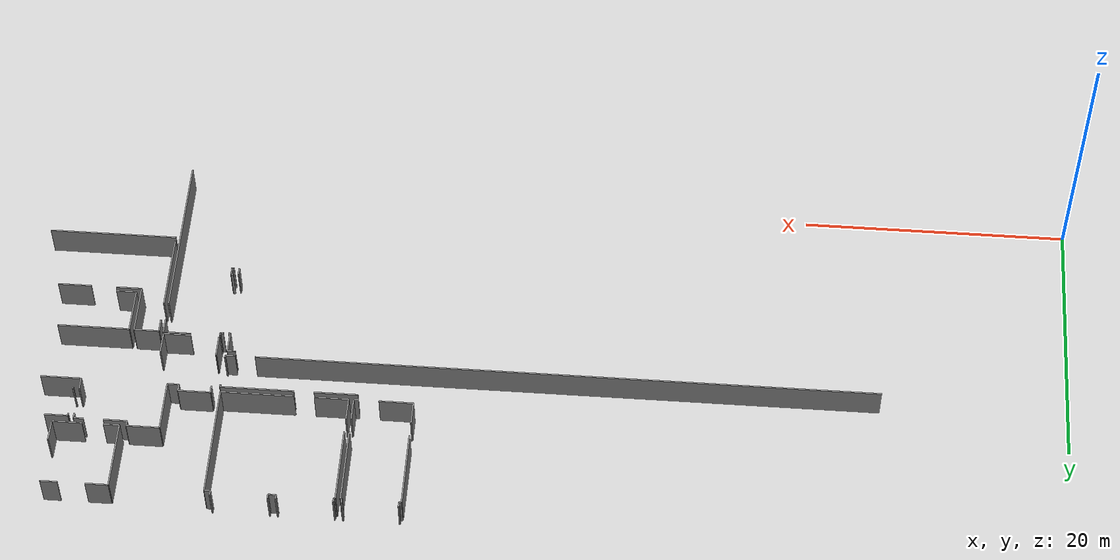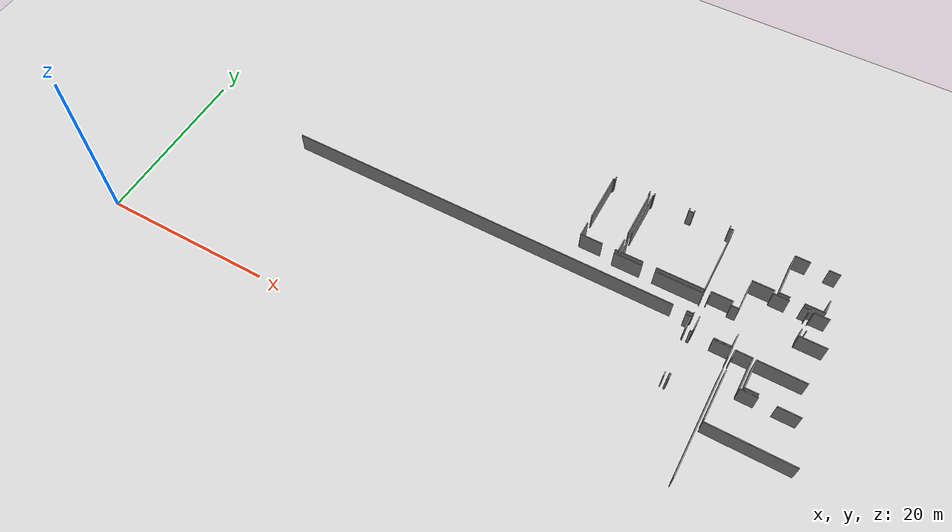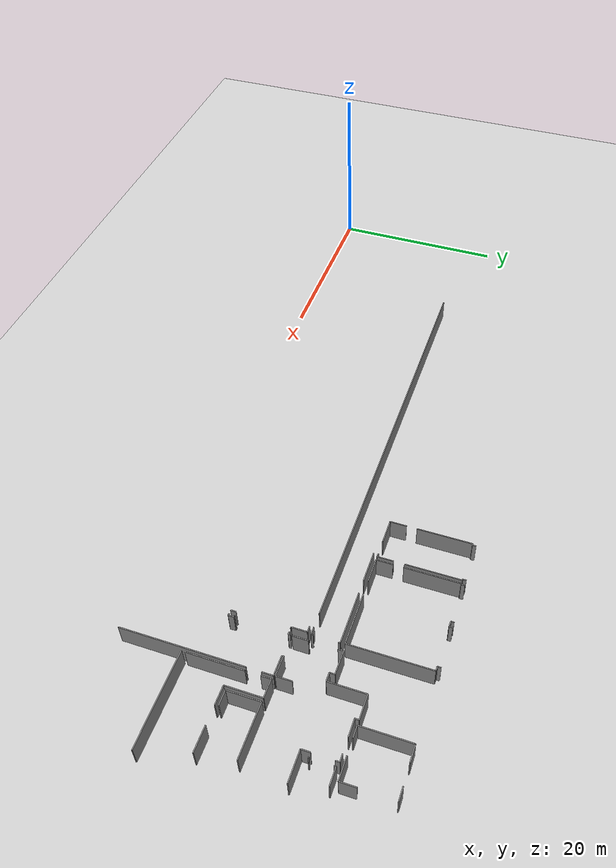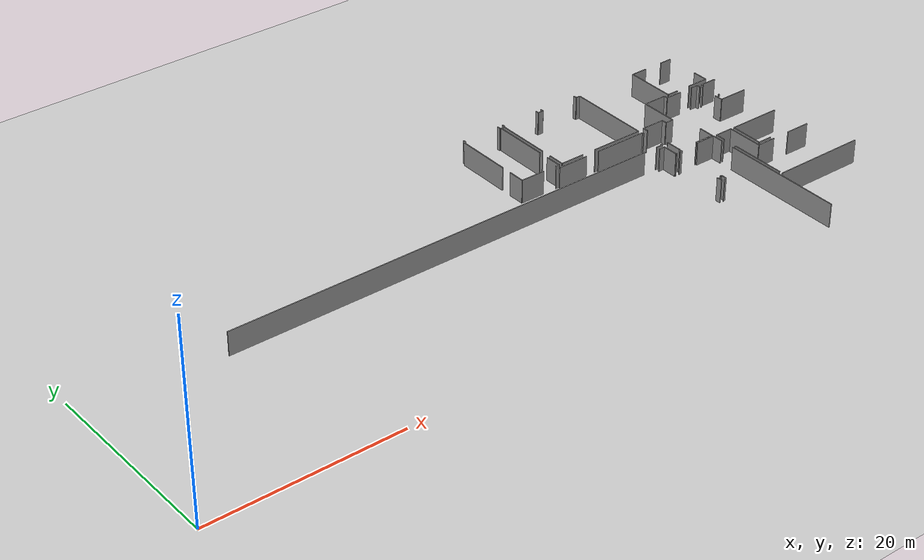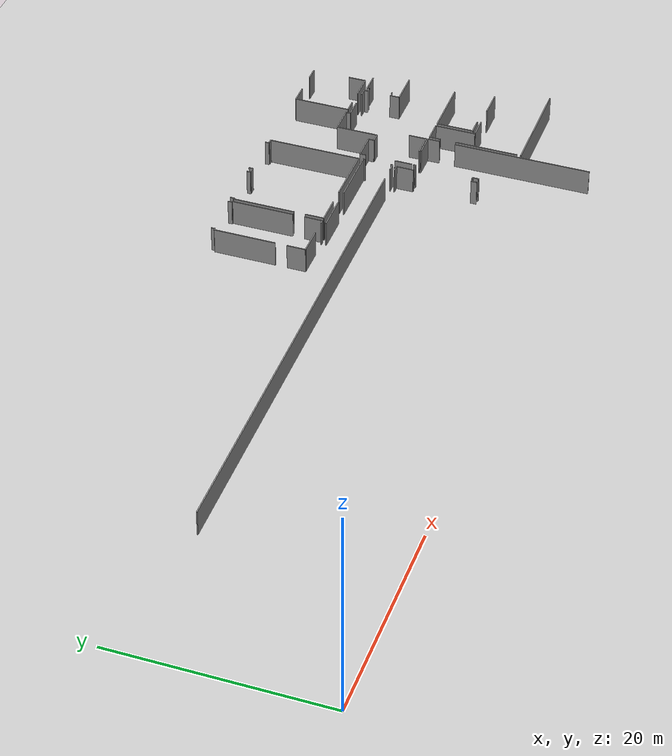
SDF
<sdf version="1.6">
 <world name="default">
  <model name="ground_plane">
   <static>1</static>
   <link name="link">
    <collision name="collision">
     <geometry><plane><normal>0 0 1</normal><size>100 100</size></plane></geometry>
     <surface><friction><ode><mu>100</mu><mu2>50</mu2></ode></friction></surface>
    </collision>
    <visual name="visual">
     <cast_shadows>0</cast_shadows>
     <geometry><plane><normal>0 0 1</normal><size>100 100</size></plane></geometry>
     <material>
      <script><uri>file://media/materials/scripts/gazebo.material</uri><name>Gazebo/Grey</name></script>
     </material>
    </visual>
   </link>
  </model>
  <model name="50010536_PLAN3">
   <static>1</static>
   <link name="Wall_569">
    <collision name="Wall_569_Collision">
     <geometry><box><size>1.7542456274 0.1 2.5</size></box></geometry>
     <pose>0.8771228137 0 1.25 0 0 0</pose>
    </collision>
    <visual name="Wall_569_Visual">
     <pose>0.8771228137 0 1.25 0 0 0</pose>
     <geometry><box><size>1.7542456274 0.1 2.5</size></box></geometry>
     <material>
      <script><uri>file://media/materials/scripts/gazebo.material</uri><name>Gazebo/Grey</name></script>
      <ambient>1 1 1 1</ambient>
     </material>
    </visual>
    <pose>151.26914897 -9.06356854903 0 0 0 1.57079632679</pose>
   </link>
   <link name="Wall_570">
    <collision name="Wall_570_Collision">
     <geometry><box><size>5.82204869378 0.1 2.5</size></box></geometry>
     <pose>2.91102434689 0 1.25 0 0 0</pose>
    </collision>
    <visual name="Wall_570_Visual">
     <pose>2.91102434689 0 1.25 0 0 0</pose>
     <geometry><box><size>5.82204869378 0.1 2.5</size></box></geometry>
     <material>
      <script><uri>file://media/materials/scripts/gazebo.material</uri><name>Gazebo/Grey</name></script>
      <ambient>1 1 1 1</ambient>
     </material>
    </visual>
    <pose>151.26914897 -6.21228454433 0 0 0 1.57079632679</pose>
   </link>
   <link name="Wall_571">
    <collision name="Wall_571_Collision">
     <geometry><box><size>0.179538456655 0.1 2.5</size></box></geometry>
     <pose>0.0897692283275 0 1.25 0 0 0</pose>
    </collision>
    <visual name="Wall_571_Visual">
     <pose>0.0897692283275 0 1.25 0 0 0</pose>
     <geometry><box><size>0.179538456655 0.1 2.5</size></box></geometry>
     <material>
      <script><uri>file://media/materials/scripts/gazebo.material</uri><name>Gazebo/Grey</name></script>
      <ambient>1 1 1 1</ambient>
     </material>
    </visual>
    <pose>151.26914897 -0.390235850554 0 0 0 0.0</pose>
   </link>
   <link name="Wall_572">
    <collision name="Wall_572_Collision">
     <geometry><box><size>0.370225057931 0.1 2.5</size></box></geometry>
     <pose>0.185112528965 0 1.25 0 0 0</pose>
    </collision>
    <visual name="Wall_572_Visual">
     <pose>0.185112528965 0 1.25 0 0 0</pose>
     <geometry><box><size>0.370225057931 0.1 2.5</size></box></geometry>
     <material>
      <script><uri>file://media/materials/scripts/gazebo.material</uri><name>Gazebo/Grey</name></script>
      <ambient>1 1 1 1</ambient>
     </material>
    </visual>
    <pose>151.448687427 -0.390235850554 0 0 0 1.57079632679</pose>
   </link>
   <link name="Wall_573">
    <collision name="Wall_573_Collision">
     <geometry><box><size>0.381728724248 0.1 2.5</size></box></geometry>
     <pose>0.190864362124 0 1.25 0 0 0</pose>
    </collision>
    <visual name="Wall_573_Visual">
     <pose>0.190864362124 0 1.25 0 0 0</pose>
     <geometry><box><size>0.381728724248 0.1 2.5</size></box></geometry>
     <material>
      <script><uri>file://media/materials/scripts/gazebo.material</uri><name>Gazebo/Grey</name></script>
      <ambient>1 1 1 1</ambient>
     </material>
    </visual>
    <pose>155.614131987 -0.0200107926229 0 0 0 -1.57079632679</pose>
   </link>
   <link name="Wall_574">
    <collision name="Wall_574_Collision">
     <geometry><box><size>0.106656508904 0.1 2.5</size></box></geometry>
     <pose>0.053328254452 0 1.25 0 0 0</pose>
    </collision>
    <visual name="Wall_574_Visual">
     <pose>0.053328254452 0 1.25 0 0 0</pose>
     <geometry><box><size>0.106656508904 0.1 2.5</size></box></geometry>
     <material>
      <script><uri>file://media/materials/scripts/gazebo.material</uri><name>Gazebo/Grey</name></script>
      <ambient>1 1 1 1</ambient>
     </material>
    </visual>
    <pose>155.614131987 -0.401739516871 0 0 0 0.0</pose>
   </link>
   <link name="Wall_575">
    <collision name="Wall_575_Collision">
     <geometry><box><size>5.85396946323 0.1 2.5</size></box></geometry>
     <pose>2.92698473161 0 1.25 0 0 0</pose>
    </collision>
    <visual name="Wall_575_Visual">
     <pose>2.92698473161 0 1.25 0 0 0</pose>
     <geometry><box><size>5.85396946323 0.1 2.5</size></box></geometry>
     <material>
      <script><uri>file://media/materials/scripts/gazebo.material</uri><name>Gazebo/Grey</name></script>
      <ambient>1 1 1 1</ambient>
     </material>
    </visual>
    <pose>155.720788496 -0.401739516871 0 0 0 -1.57079632679</pose>
   </link>
   <link name="Wall_576">
    <collision name="Wall_576_Collision">
     <geometry><box><size>1.71361457639 0.1 2.5</size></box></geometry>
     <pose>0.856807288195 0 1.25 0 0 0</pose>
    </collision>
    <visual name="Wall_576_Visual">
     <pose>0.856807288195 0 1.25 0 0 0</pose>
     <geometry><box><size>1.71361457639 0.1 2.5</size></box></geometry>
     <material>
      <script><uri>file://media/materials/scripts/gazebo.material</uri><name>Gazebo/Grey</name></script>
      <ambient>1 1 1 1</ambient>
     </material>
    </visual>
    <pose>155.720788496 -7.35325524553 0 0 0 -1.57079632679</pose>
   </link>
   <link name="Wall_577">
    <collision name="Wall_577_Collision">
     <geometry><box><size>0.359584801447 0.1 2.5</size></box></geometry>
     <pose>0.179792400724 0 1.25 0 0 0</pose>
    </collision>
    <visual name="Wall_577_Visual">
     <pose>0.179792400724 0 1.25 0 0 0</pose>
     <geometry><box><size>0.359584801447 0.1 2.5</size></box></geometry>
     <material>
      <script><uri>file://media/materials/scripts/gazebo.material</uri><name>Gazebo/Grey</name></script>
      <ambient>1 1 1 1</ambient>
     </material>
    </visual>
    <pose>155.720788496 -9.06686982192 0 0 0 3.14159265359</pose>
   </link>
   <link name="Wall_578">
    <collision name="Wall_578_Collision">
     <geometry><box><size>2.57474103016 0.1 2.5</size></box></geometry>
     <pose>1.28737051508 0 1.25 0 0 0</pose>
    </collision>
    <visual name="Wall_578_Visual">
     <pose>1.28737051508 0 1.25 0 0 0</pose>
     <geometry><box><size>2.57474103016 0.1 2.5</size></box></geometry>
     <material>
      <script><uri>file://media/materials/scripts/gazebo.material</uri><name>Gazebo/Grey</name></script>
      <ambient>1 1 1 1</ambient>
     </material>
    </visual>
    <pose>153.843887884 -9.06686982192 0 0 0 3.14031047656</pose>
   </link>
   <link name="Wall_579">
    <collision name="Wall_579_Collision">
     <geometry><box><size>1.75703901216 0.1 2.5</size></box></geometry>
     <pose>0.878519506079 0 1.25 0 0 0</pose>
    </collision>
    <visual name="Wall_579_Visual">
     <pose>0.878519506079 0 1.25 0 0 0</pose>
     <geometry><box><size>1.75703901216 0.1 2.5</size></box></geometry>
     <material>
      <script><uri>file://media/materials/scripts/gazebo.material</uri><name>Gazebo/Grey</name></script>
      <ambient>1 1 1 1</ambient>
     </material>
    </visual>
    <pose>156.098149383 -9.07169475923 0 0 0 1.57079632679</pose>
   </link>
   <link name="Wall_580">
    <collision name="Wall_580_Collision">
     <geometry><box><size>5.8357870679 0.1 2.5</size></box></geometry>
     <pose>2.91789353395 0 1.25 0 0 0</pose>
    </collision>
    <visual name="Wall_580_Visual">
     <pose>2.91789353395 0 1.25 0 0 0</pose>
     <geometry><box><size>5.8357870679 0.1 2.5</size></box></geometry>
     <material>
      <script><uri>file://media/materials/scripts/gazebo.material</uri><name>Gazebo/Grey</name></script>
      <ambient>1 1 1 1</ambient>
     </material>
    </visual>
    <pose>156.098149383 -6.22498174777 0 0 0 1.57079632679</pose>
   </link>
   <link name="Wall_581">
    <collision name="Wall_581_Collision">
     <geometry><box><size>0.118591880138 0.1 2.5</size></box></geometry>
     <pose>0.0592959400692 0 1.25 0 0 0</pose>
    </collision>
    <visual name="Wall_581_Visual">
     <pose>0.0592959400692 0 1.25 0 0 0</pose>
     <geometry><box><size>0.118591880138 0.1 2.5</size></box></geometry>
     <material>
      <script><uri>file://media/materials/scripts/gazebo.material</uri><name>Gazebo/Grey</name></script>
      <ambient>1 1 1 1</ambient>
     </material>
    </visual>
    <pose>156.098149383 -0.389194679872 0 0 0 0.0</pose>
   </link>
   <link name="Wall_582">
    <collision name="Wall_582_Collision">
     <geometry><box><size>0.364079611466 0.1 2.5</size></box></geometry>
     <pose>0.182039805733 0 1.25 0 0 0</pose>
    </collision>
    <visual name="Wall_582_Visual">
     <pose>0.182039805733 0 1.25 0 0 0</pose>
     <geometry><box><size>0.364079611466 0.1 2.5</size></box></geometry>
     <material>
      <script><uri>file://media/materials/scripts/gazebo.material</uri><name>Gazebo/Grey</name></script>
      <ambient>1 1 1 1</ambient>
     </material>
    </visual>
    <pose>156.216741263 -0.389194679872 0 0 0 1.57079632679</pose>
   </link>
   <link name="Wall_583">
    <collision name="Wall_583_Collision">
     <geometry><box><size>0.351509380059 0.1 2.5</size></box></geometry>
     <pose>0.17575469003 0 1.25 0 0 0</pose>
    </collision>
    <visual name="Wall_583_Visual">
     <pose>0.17575469003 0 1.25 0 0 0</pose>
     <geometry><box><size>0.351509380059 0.1 2.5</size></box></geometry>
     <material>
      <script><uri>file://media/materials/scripts/gazebo.material</uri><name>Gazebo/Grey</name></script>
      <ambient>1 1 1 1</ambient>
     </material>
    </visual>
    <pose>160.416214329 -0.0251150684062 0 0 0 -1.57079632679</pose>
   </link>
   <link name="Wall_584">
    <collision name="Wall_584_Collision">
     <geometry><box><size>0.583563470146 0.1 2.5</size></box></geometry>
     <pose>0.291781735073 0 1.25 0 0 0</pose>
    </collision>
    <visual name="Wall_584_Visual">
     <pose>0.291781735073 0 1.25 0 0 0</pose>
     <geometry><box><size>0.583563470146 0.1 2.5</size></box></geometry>
     <material>
      <script><uri>file://media/materials/scripts/gazebo.material</uri><name>Gazebo/Grey</name></script>
      <ambient>1 1 1 1</ambient>
     </material>
    </visual>
    <pose>160.416214329 -0.376624448465 0 0 0 0.0</pose>
   </link>
   <link name="Wall_585">
    <collision name="Wall_585_Collision">
     <geometry><box><size>0.351509380059 0.1 2.5</size></box></geometry>
     <pose>0.17575469003 0 1.25 0 0 0</pose>
    </collision>
    <visual name="Wall_585_Visual">
     <pose>0.17575469003 0 1.25 0 0 0</pose>
     <geometry><box><size>0.351509380059 0.1 2.5</size></box></geometry>
     <material>
      <script><uri>file://media/materials/scripts/gazebo.material</uri><name>Gazebo/Grey</name></script>
      <ambient>1 1 1 1</ambient>
     </material>
    </visual>
    <pose>160.999777799 -0.376624448465 0 0 0 1.57079632679</pose>
   </link>
   <link name="Wall_586">
    <collision name="Wall_586_Collision">
     <geometry><box><size>0.385741040536 0.1 2.5</size></box></geometry>
     <pose>0.192870520268 0 1.25 0 0 0</pose>
    </collision>
    <visual name="Wall_586_Visual">
     <pose>0.192870520268 0 1.25 0 0 0</pose>
     <geometry><box><size>0.385741040536 0.1 2.5</size></box></geometry>
     <material>
      <script><uri>file://media/materials/scripts/gazebo.material</uri><name>Gazebo/Grey</name></script>
      <ambient>1 1 1 1</ambient>
     </material>
    </visual>
    <pose>165.23327937 -0.0251150684062 0 0 0 -1.57079632679</pose>
   </link>
   <link name="Wall_587">
    <collision name="Wall_587_Collision">
     <geometry><box><size>0.454559883186 0.1 2.5</size></box></geometry>
     <pose>0.227279941593 0 1.25 0 0 0</pose>
    </collision>
    <visual name="Wall_587_Visual">
     <pose>0.227279941593 0 1.25 0 0 0</pose>
     <geometry><box><size>0.454559883186 0.1 2.5</size></box></geometry>
     <material>
      <script><uri>file://media/materials/scripts/gazebo.material</uri><name>Gazebo/Grey</name></script>
      <ambient>1 1 1 1</ambient>
     </material>
    </visual>
    <pose>165.23327937 -0.410856108942 0 0 0 0.0</pose>
   </link>
   <link name="Wall_588">
    <collision name="Wall_588_Collision">
     <geometry><box><size>8.65525188077 0.1 2.5</size></box></geometry>
     <pose>4.32762594039 0 1.25 0 0 0</pose>
    </collision>
    <visual name="Wall_588_Visual">
     <pose>4.32762594039 0 1.25 0 0 0</pose>
     <geometry><box><size>8.65525188077 0.1 2.5</size></box></geometry>
     <material>
      <script><uri>file://media/materials/scripts/gazebo.material</uri><name>Gazebo/Grey</name></script>
      <ambient>1 1 1 1</ambient>
     </material>
    </visual>
    <pose>165.687839253 -0.410856108942 0 0 0 -1.57079632679</pose>
   </link>
   <link name="Wall_589">
    <collision name="Wall_589_Collision">
     <geometry><box><size>5.51312573406 0.1 2.5</size></box></geometry>
     <pose>2.75656286703 0 1.25 0 0 0</pose>
    </collision>
    <visual name="Wall_589_Visual">
     <pose>2.75656286703 0 1.25 0 0 0</pose>
     <geometry><box><size>5.51312573406 0.1 2.5</size></box></geometry>
     <material>
      <script><uri>file://media/materials/scripts/gazebo.material</uri><name>Gazebo/Grey</name></script>
      <ambient>1 1 1 1</ambient>
     </material>
    </visual>
    <pose>165.687839253 -9.06610798972 0 0 0 3.14159265359</pose>
   </link>
   <link name="Wall_590">
    <collision name="Wall_590_Collision">
     <geometry><box><size>2.56992004902 0.1 2.5</size></box></geometry>
     <pose>1.28496002451 0 1.25 0 0 0</pose>
    </collision>
    <visual name="Wall_590_Visual">
     <pose>1.28496002451 0 1.25 0 0 0</pose>
     <geometry><box><size>2.56992004902 0.1 2.5</size></box></geometry>
     <material>
      <script><uri>file://media/materials/scripts/gazebo.material</uri><name>Gazebo/Grey</name></script>
      <ambient>1 1 1 1</ambient>
     </material>
    </visual>
    <pose>158.668063359 -9.06610798972 0 0 0 -3.13941874397</pose>
   </link>
   <link name="Wall_606">
    <collision name="Wall_606_Collision">
     <geometry><box><size>3.30609783195 0.1 2.5</size></box></geometry>
     <pose>1.65304891598 0 1.25 0 0 0</pose>
    </collision>
    <visual name="Wall_606_Visual">
     <pose>1.65304891598 0 1.25 0 0 0</pose>
     <geometry><box><size>3.30609783195 0.1 2.5</size></box></geometry>
     <material>
      <script><uri>file://media/materials/scripts/gazebo.material</uri><name>Gazebo/Grey</name></script>
      <ambient>1 1 1 1</ambient>
     </material>
    </visual>
    <pose>155.430022538 -9.51355743897 0 0 0 0.0</pose>
   </link>
   <link name="Wall_607">
    <collision name="Wall_607_Collision">
     <geometry><box><size>5.53674253246 0.1 2.5</size></box></geometry>
     <pose>2.76837126623 0 1.25 0 0 0</pose>
    </collision>
    <visual name="Wall_607_Visual">
     <pose>2.76837126623 0 1.25 0 0 0</pose>
     <geometry><box><size>5.53674253246 0.1 2.5</size></box></geometry>
     <material>
      <script><uri>file://media/materials/scripts/gazebo.material</uri><name>Gazebo/Grey</name></script>
      <ambient>1 1 1 1</ambient>
     </material>
    </visual>
    <pose>160.230581214 -9.51355743897 0 0 0 0.0</pose>
   </link>
   <link name="Wall_608">
    <collision name="Wall_608_Collision">
     <geometry><box><size>0.20213947878 0.1 2.5</size></box></geometry>
     <pose>0.10106973939 0 1.25 0 0 0</pose>
    </collision>
    <visual name="Wall_608_Visual">
     <pose>0.10106973939 0 1.25 0 0 0</pose>
     <geometry><box><size>0.20213947878 0.1 2.5</size></box></geometry>
     <material>
      <script><uri>file://media/materials/scripts/gazebo.material</uri><name>Gazebo/Grey</name></script>
      <ambient>1 1 1 1</ambient>
     </material>
    </visual>
    <pose>165.767323747 -9.51355743897 0 0 0 -1.57079632679</pose>
   </link>
   <link name="Wall_609">
    <collision name="Wall_609_Collision">
     <geometry><box><size>0.195029044853 0.1 2.5</size></box></geometry>
     <pose>0.0975145224264 0 1.25 0 0 0</pose>
    </collision>
    <visual name="Wall_609_Visual">
     <pose>0.0975145224264 0 1.25 0 0 0</pose>
     <geometry><box><size>0.195029044853 0.1 2.5</size></box></geometry>
     <material>
      <script><uri>file://media/materials/scripts/gazebo.material</uri><name>Gazebo/Grey</name></script>
      <ambient>1 1 1 1</ambient>
     </material>
    </visual>
    <pose>165.767323747 -12.1771767768 0 0 0 -1.57079632679</pose>
   </link>
   <link name="Wall_610">
    <collision name="Wall_610_Collision">
     <geometry><box><size>0.750658667428 0.1 2.5</size></box></geometry>
     <pose>0.375329333714 0 1.25 0 0 0</pose>
    </collision>
    <visual name="Wall_610_Visual">
     <pose>0.375329333714 0 1.25 0 0 0</pose>
     <geometry><box><size>0.750658667428 0.1 2.5</size></box></geometry>
     <material>
      <script><uri>file://media/materials/scripts/gazebo.material</uri><name>Gazebo/Grey</name></script>
      <ambient>1 1 1 1</ambient>
     </material>
    </visual>
    <pose>165.767323747 -12.3722058217 0 0 0 3.14159265359</pose>
   </link>
   <link name="Wall_611">
    <collision name="Wall_611_Collision">
     <geometry><box><size>46.8882328667 0.1 2.5</size></box></geometry>
     <pose>23.4441164334 0 1.25 0 0 0</pose>
    </collision>
    <visual name="Wall_611_Visual">
     <pose>23.4441164334 0 1.25 0 0 0</pose>
     <geometry><box><size>46.8882328667 0.1 2.5</size></box></geometry>
     <material>
      <script><uri>file://media/materials/scripts/gazebo.material</uri><name>Gazebo/Grey</name></script>
      <ambient>1 1 1 1</ambient>
     </material>
    </visual>
    <pose>163.517633241 -12.3722058217 0 0 0 3.14159265359</pose>
   </link>
   <link name="Wall_695">
    <collision name="Wall_695_Collision">
     <geometry><box><size>1.72529600356 0.1 2.5</size></box></geometry>
     <pose>0.862648001778 0 1.25 0 0 0</pose>
    </collision>
    <visual name="Wall_695_Visual">
     <pose>0.862648001778 0 1.25 0 0 0</pose>
     <geometry><box><size>1.72529600356 0.1 2.5</size></box></geometry>
     <material>
      <script><uri>file://media/materials/scripts/gazebo.material</uri><name>Gazebo/Grey</name></script>
      <ambient>1 1 1 1</ambient>
     </material>
    </visual>
    <pose>172.711678253 -0.360321239247 0 0 0 0.0</pose>
   </link>
   <link name="Wall_696">
    <collision name="Wall_696_Collision">
     <geometry><box><size>1.29232136622 0.1 2.5</size></box></geometry>
     <pose>0.64616068311 0 1.25 0 0 0</pose>
    </collision>
    <visual name="Wall_696_Visual">
     <pose>0.64616068311 0 1.25 0 0 0</pose>
     <geometry><box><size>1.29232136622 0.1 2.5</size></box></geometry>
     <material>
      <script><uri>file://media/materials/scripts/gazebo.material</uri><name>Gazebo/Grey</name></script>
      <ambient>1 1 1 1</ambient>
     </material>
    </visual>
    <pose>176.4581151 -0.360321239247 0 0 0 0.0</pose>
   </link>
   <link name="Wall_699">
    <collision name="Wall_699_Collision">
     <geometry><box><size>1.64296733644 0.1 2.5</size></box></geometry>
     <pose>0.821483668222 0 1.25 0 0 0</pose>
    </collision>
    <visual name="Wall_699_Visual">
     <pose>0.821483668222 0 1.25 0 0 0</pose>
     <geometry><box><size>1.64296733644 0.1 2.5</size></box></geometry>
     <material>
      <script><uri>file://media/materials/scripts/gazebo.material</uri><name>Gazebo/Grey</name></script>
      <ambient>1 1 1 1</ambient>
     </material>
    </visual>
    <pose>177.750436466 -3.94695108402 0 0 0 -1.57079632679</pose>
   </link>
   <link name="Wall_700">
    <collision name="Wall_700_Collision">
     <geometry><box><size>2.2534996667 0.1 2.5</size></box></geometry>
     <pose>1.12674983335 0 1.25 0 0 0</pose>
    </collision>
    <visual name="Wall_700_Visual">
     <pose>1.12674983335 0 1.25 0 0 0</pose>
     <geometry><box><size>2.2534996667 0.1 2.5</size></box></geometry>
     <material>
      <script><uri>file://media/materials/scripts/gazebo.material</uri><name>Gazebo/Grey</name></script>
      <ambient>1 1 1 1</ambient>
     </material>
    </visual>
    <pose>177.750436466 -5.58991842047 0 0 0 3.14159265359</pose>
   </link>
   <link name="Wall_701">
    <collision name="Wall_701_Collision">
     <geometry><box><size>1.19531473193 0.1 2.5</size></box></geometry>
     <pose>0.597657365965 0 1.25 0 0 0</pose>
    </collision>
    <visual name="Wall_701_Visual">
     <pose>0.597657365965 0 1.25 0 0 0</pose>
     <geometry><box><size>1.19531473193 0.1 2.5</size></box></geometry>
     <material>
      <script><uri>file://media/materials/scripts/gazebo.material</uri><name>Gazebo/Grey</name></script>
      <ambient>1 1 1 1</ambient>
     </material>
    </visual>
    <pose>173.908516649 -5.58991842047 0 0 0 3.14159265359</pose>
   </link>
   <link name="Wall_702">
    <collision name="Wall_702_Collision">
     <geometry><box><size>5.22959740318 0.1 2.5</size></box></geometry>
     <pose>2.61479870159 0 1.25 0 0 0</pose>
    </collision>
    <visual name="Wall_702_Visual">
     <pose>2.61479870159 0 1.25 0 0 0</pose>
     <geometry><box><size>5.22959740318 0.1 2.5</size></box></geometry>
     <material>
      <script><uri>file://media/materials/scripts/gazebo.material</uri><name>Gazebo/Grey</name></script>
      <ambient>1 1 1 1</ambient>
     </material>
    </visual>
    <pose>172.713201917 -5.58991842047 0 0 0 1.57108768085</pose>
   </link>
   <link name="Wall_703">
    <collision name="Wall_703_Collision">
     <geometry><box><size>1.7664349427 0.1 2.5</size></box></geometry>
     <pose>0.883217471352 0 1.25 0 0 0</pose>
    </collision>
    <visual name="Wall_703_Visual">
     <pose>0.883217471352 0 1.25 0 0 0</pose>
     <geometry><box><size>1.7664349427 0.1 2.5</size></box></geometry>
     <material>
      <script><uri>file://media/materials/scripts/gazebo.material</uri><name>Gazebo/Grey</name></script>
      <ambient>1 1 1 1</ambient>
     </material>
    </visual>
    <pose>176.639685109 -6.1579405136 0 0 0 0.0</pose>
   </link>
   <link name="Wall_706">
    <collision name="Wall_706_Collision">
     <geometry><box><size>0.104371012285 0.1 2.5</size></box></geometry>
     <pose>0.0521855061423 0 1.25 0 0 0</pose>
    </collision>
    <visual name="Wall_706_Visual">
     <pose>0.0521855061423 0 1.25 0 0 0</pose>
     <geometry><box><size>0.104371012285 0.1 2.5</size></box></geometry>
     <material>
      <script><uri>file://media/materials/scripts/gazebo.material</uri><name>Gazebo/Grey</name></script>
      <ambient>1 1 1 1</ambient>
     </material>
    </visual>
    <pose>176.661524299 -8.69636542552 0 0 0 1.57079632679</pose>
   </link>
   <link name="Wall_707">
    <collision name="Wall_707_Collision">
     <geometry><box><size>0.215438581014 0.1 2.5</size></box></geometry>
     <pose>0.107719290507 0 1.25 0 0 0</pose>
    </collision>
    <visual name="Wall_707_Visual">
     <pose>0.107719290507 0 1.25 0 0 0</pose>
     <geometry><box><size>0.215438581014 0.1 2.5</size></box></geometry>
     <material>
      <script><uri>file://media/materials/scripts/gazebo.material</uri><name>Gazebo/Grey</name></script>
      <ambient>1 1 1 1</ambient>
     </material>
    </visual>
    <pose>176.661524299 -6.37226930768 0 0 0 1.6723415898</pose>
   </link>
   <link name="Wall_712">
    <collision name="Wall_712_Collision">
     <geometry><box><size>2.43989461321 0.1 2.5</size></box></geometry>
     <pose>1.21994730661 0 1.25 0 0 0</pose>
    </collision>
    <visual name="Wall_712_Visual">
     <pose>1.21994730661 0 1.25 0 0 0</pose>
     <geometry><box><size>2.43989461321 0.1 2.5</size></box></geometry>
     <material>
      <script><uri>file://media/materials/scripts/gazebo.material</uri><name>Gazebo/Grey</name></script>
      <ambient>1 1 1 1</ambient>
     </material>
    </visual>
    <pose>166.408786465 -8.95767387233 0 0 0 0.0</pose>
   </link>
   <link name="Wall_713">
    <collision name="Wall_713_Collision">
     <geometry><box><size>0.540392978447 0.1 2.5</size></box></geometry>
     <pose>0.270196489223 0 1.25 0 0 0</pose>
    </collision>
    <visual name="Wall_713_Visual">
     <pose>0.270196489223 0 1.25 0 0 0</pose>
     <geometry><box><size>0.540392978447 0.1 2.5</size></box></geometry>
     <material>
      <script><uri>file://media/materials/scripts/gazebo.material</uri><name>Gazebo/Grey</name></script>
      <ambient>1 1 1 1</ambient>
     </material>
    </visual>
    <pose>168.848681078 -8.95767387233 0 0 0 -1.57079632679</pose>
   </link>
   <link name="Wall_714">
    <collision name="Wall_714_Collision">
     <geometry><box><size>0.873313652668 0.1 2.5</size></box></geometry>
     <pose>0.436656826334 0 1.25 0 0 0</pose>
    </collision>
    <visual name="Wall_714_Visual">
     <pose>0.436656826334 0 1.25 0 0 0</pose>
     <geometry><box><size>0.873313652668 0.1 2.5</size></box></geometry>
     <material>
      <script><uri>file://media/materials/scripts/gazebo.material</uri><name>Gazebo/Grey</name></script>
      <ambient>1 1 1 1</ambient>
     </material>
    </visual>
    <pose>168.848681078 -9.49806685078 0 0 0 0.0</pose>
   </link>
   <link name="Wall_715">
    <collision name="Wall_715_Collision">
     <geometry><box><size>3.92193759325 0.1 2.5</size></box></geometry>
     <pose>1.96096879662 0 1.25 0 0 0</pose>
    </collision>
    <visual name="Wall_715_Visual">
     <pose>1.96096879662 0 1.25 0 0 0</pose>
     <geometry><box><size>3.92193759325 0.1 2.5</size></box></geometry>
     <material>
      <script><uri>file://media/materials/scripts/gazebo.material</uri><name>Gazebo/Grey</name></script>
      <ambient>1 1 1 1</ambient>
     </material>
    </visual>
    <pose>169.721994731 -9.49806685078 0 0 0 1.57079632679</pose>
   </link>
   <link name="Wall_716">
    <collision name="Wall_716_Collision">
     <geometry><box><size>2.48585848967 0.1 2.5</size></box></geometry>
     <pose>1.24292924483 0 1.25 0 0 0</pose>
    </collision>
    <visual name="Wall_716_Visual">
     <pose>1.24292924483 0 1.25 0 0 0</pose>
     <geometry><box><size>2.48585848967 0.1 2.5</size></box></geometry>
     <material>
      <script><uri>file://media/materials/scripts/gazebo.material</uri><name>Gazebo/Grey</name></script>
      <ambient>1 1 1 1</ambient>
     </material>
    </visual>
    <pose>169.721994731 -5.57612925753 0 0 0 0.0</pose>
   </link>
   <link name="Wall_717">
    <collision name="Wall_717_Collision">
     <geometry><box><size>0.416646033711 0.1 2.5</size></box></geometry>
     <pose>0.208323016856 0 1.25 0 0 0</pose>
    </collision>
    <visual name="Wall_717_Visual">
     <pose>0.208323016856 0 1.25 0 0 0</pose>
     <geometry><box><size>0.416646033711 0.1 2.5</size></box></geometry>
     <material>
      <script><uri>file://media/materials/scripts/gazebo.material</uri><name>Gazebo/Grey</name></script>
      <ambient>1 1 1 1</ambient>
     </material>
    </visual>
    <pose>172.20785322 -5.57612925753 0 0 0 -1.57079632679</pose>
   </link>
   <link name="Wall_718">
    <collision name="Wall_718_Collision">
     <geometry><box><size>1.76770466305 0.1 2.5</size></box></geometry>
     <pose>0.883852331524 0 1.25 0 0 0</pose>
    </collision>
    <visual name="Wall_718_Visual">
     <pose>0.883852331524 0 1.25 0 0 0</pose>
     <geometry><box><size>1.76770466305 0.1 2.5</size></box></geometry>
     <material>
      <script><uri>file://media/materials/scripts/gazebo.material</uri><name>Gazebo/Grey</name></script>
      <ambient>1 1 1 1</ambient>
     </material>
    </visual>
    <pose>172.20785322 -5.99277529124 0 0 0 0.0</pose>
   </link>
   <link name="Wall_719">
    <collision name="Wall_719_Collision">
     <geometry><box><size>0.735675967368 0.1 2.5</size></box></geometry>
     <pose>0.367837983684 0 1.25 0 0 0</pose>
    </collision>
    <visual name="Wall_719_Visual">
     <pose>0.367837983684 0 1.25 0 0 0</pose>
     <geometry><box><size>0.735675967368 0.1 2.5</size></box></geometry>
     <material>
      <script><uri>file://media/materials/scripts/gazebo.material</uri><name>Gazebo/Grey</name></script>
      <ambient>1 1 1 1</ambient>
     </material>
    </visual>
    <pose>175.460622798 -5.99277529124 0 0 0 0.0</pose>
   </link>
   <link name="Wall_720">
    <collision name="Wall_720_Collision">
     <geometry><box><size>0.406412087738 0.1 2.5</size></box></geometry>
     <pose>0.203206043869 0 1.25 0 0 0</pose>
    </collision>
    <visual name="Wall_720_Visual">
     <pose>0.203206043869 0 1.25 0 0 0</pose>
     <geometry><box><size>0.406412087738 0.1 2.5</size></box></geometry>
     <material>
      <script><uri>file://media/materials/scripts/gazebo.material</uri><name>Gazebo/Grey</name></script>
      <ambient>1 1 1 1</ambient>
     </material>
    </visual>
    <pose>176.196298765 -5.99277529124 0 0 0 -1.57079632679</pose>
   </link>
   <link name="Wall_721">
    <collision name="Wall_721_Collision">
     <geometry><box><size>0.924102466432 0.1 2.5</size></box></geometry>
     <pose>0.462051233216 0 1.25 0 0 0</pose>
    </collision>
    <visual name="Wall_721_Visual">
     <pose>0.462051233216 0 1.25 0 0 0</pose>
     <geometry><box><size>0.924102466432 0.1 2.5</size></box></geometry>
     <material>
      <script><uri>file://media/materials/scripts/gazebo.material</uri><name>Gazebo/Grey</name></script>
      <ambient>1 1 1 1</ambient>
     </material>
    </visual>
    <pose>176.196298765 -8.60545344888 0 0 0 -1.57079632679</pose>
   </link>
   <link name="Wall_722">
    <collision name="Wall_722_Collision">
     <geometry><box><size>3.06154969368 0.1 2.5</size></box></geometry>
     <pose>1.53077484684 0 1.25 0 0 0</pose>
    </collision>
    <visual name="Wall_722_Visual">
     <pose>1.53077484684 0 1.25 0 0 0</pose>
     <geometry><box><size>3.06154969368 0.1 2.5</size></box></geometry>
     <material>
      <script><uri>file://media/materials/scripts/gazebo.material</uri><name>Gazebo/Grey</name></script>
      <ambient>1 1 1 1</ambient>
     </material>
    </visual>
    <pose>176.196298765 -9.52955591531 0 0 0 0.0</pose>
   </link>
   <link name="Wall_727">
    <collision name="Wall_727_Collision">
     <geometry><box><size>1.65266799987 0.1 2.5</size></box></geometry>
     <pose>0.826333999937 0 1.25 0 0 0</pose>
    </collision>
    <visual name="Wall_727_Visual">
     <pose>0.826333999937 0 1.25 0 0 0</pose>
     <geometry><box><size>1.65266799987 0.1 2.5</size></box></geometry>
     <material>
      <script><uri>file://media/materials/scripts/gazebo.material</uri><name>Gazebo/Grey</name></script>
      <ambient>1 1 1 1</ambient>
     </material>
    </visual>
    <pose>170.676062597 -12.3653493318 0 0 0 -1.57079632679</pose>
   </link>
   <link name="Wall_728">
    <collision name="Wall_728_Collision">
     <geometry><box><size>2.07904009142 0.1 2.5</size></box></geometry>
     <pose>1.03952004571 0 1.25 0 0 0</pose>
    </collision>
    <visual name="Wall_728_Visual">
     <pose>1.03952004571 0 1.25 0 0 0</pose>
     <geometry><box><size>2.07904009142 0.1 2.5</size></box></geometry>
     <material>
      <script><uri>file://media/materials/scripts/gazebo.material</uri><name>Gazebo/Grey</name></script>
      <ambient>1 1 1 1</ambient>
     </material>
    </visual>
    <pose>170.676062597 -14.0180173317 0 0 0 3.14159265359</pose>
   </link>
   <link name="Wall_729">
    <collision name="Wall_729_Collision">
     <geometry><box><size>1.63768529981 0.1 2.5</size></box></geometry>
     <pose>0.818842649906 0 1.25 0 0 0</pose>
    </collision>
    <visual name="Wall_729_Visual">
     <pose>0.818842649906 0 1.25 0 0 0</pose>
     <geometry><box><size>1.63768529981 0.1 2.5</size></box></geometry>
     <material>
      <script><uri>file://media/materials/scripts/gazebo.material</uri><name>Gazebo/Grey</name></script>
      <ambient>1 1 1 1</ambient>
     </material>
    </visual>
    <pose>166.460337111 -14.0180173317 0 0 0 1.57079632679</pose>
   </link>
   <link name="Wall_730">
    <collision name="Wall_730_Collision">
     <geometry><box><size>0.0401231628734 0.1 2.5</size></box></geometry>
     <pose>0.0200615814367 0 1.25 0 0 0</pose>
    </collision>
    <visual name="Wall_730_Visual">
     <pose>0.0200615814367 0 1.25 0 0 0</pose>
     <geometry><box><size>0.0401231628734 0.1 2.5</size></box></geometry>
     <material>
      <script><uri>file://media/materials/scripts/gazebo.material</uri><name>Gazebo/Grey</name></script>
      <ambient>1 1 1 1</ambient>
     </material>
    </visual>
    <pose>166.460337111 -12.3803320319 0 0 0 3.14159265359</pose>
   </link>
   <link name="Wall_731">
    <collision name="Wall_731_Collision">
     <geometry><box><size>0.560063266577 0.1 2.5</size></box></geometry>
     <pose>0.280031633288 0 1.25 0 0 0</pose>
    </collision>
    <visual name="Wall_731_Visual">
     <pose>0.280031633288 0 1.25 0 0 0</pose>
     <geometry><box><size>0.560063266577 0.1 2.5</size></box></geometry>
     <material>
      <script><uri>file://media/materials/scripts/gazebo.material</uri><name>Gazebo/Grey</name></script>
      <ambient>1 1 1 1</ambient>
     </material>
    </visual>
    <pose>166.420213948 -9.51762054408 0 0 0 1.59120165748</pose>
   </link>
   <link name="Wall_774">
    <collision name="Wall_774_Collision">
     <geometry><box><size>3.47801796654 0.1 2.5</size></box></geometry>
     <pose>1.73900898327 0 1.25 0 0 0</pose>
    </collision>
    <visual name="Wall_774_Visual">
     <pose>1.73900898327 0 1.25 0 0 0</pose>
     <geometry><box><size>3.47801796654 0.1 2.5</size></box></geometry>
     <material>
      <script><uri>file://media/materials/scripts/gazebo.material</uri><name>Gazebo/Grey</name></script>
      <ambient>1 1 1 1</ambient>
     </material>
    </visual>
    <pose>173.315303304 -17.7289020093 0 0 0 1.57079632679</pose>
   </link>
   <link name="Wall_775">
    <collision name="Wall_775_Collision">
     <geometry><box><size>5.45217915754 0.1 2.5</size></box></geometry>
     <pose>2.72608957877 0 1.25 0 0 0</pose>
    </collision>
    <visual name="Wall_775_Visual">
     <pose>2.72608957877 0 1.25 0 0 0</pose>
     <geometry><box><size>5.45217915754 0.1 2.5</size></box></geometry>
     <material>
      <script><uri>file://media/materials/scripts/gazebo.material</uri><name>Gazebo/Grey</name></script>
      <ambient>1 1 1 1</ambient>
     </material>
    </visual>
    <pose>173.315303304 -14.2508840428 0 0 0 0.0</pose>
   </link>
   <link name="Wall_778">
    <collision name="Wall_778_Collision">
     <geometry><box><size>1.5115109574 0.1 2.5</size></box></geometry>
     <pose>0.755755478699 0 1.25 0 0 0</pose>
    </collision>
    <visual name="Wall_778_Visual">
     <pose>0.755755478699 0 1.25 0 0 0</pose>
     <geometry><box><size>1.5115109574 0.1 2.5</size></box></geometry>
     <material>
      <script><uri>file://media/materials/scripts/gazebo.material</uri><name>Gazebo/Grey</name></script>
      <ambient>1 1 1 1</ambient>
     </material>
    </visual>
    <pose>174.826778402 -17.7184903025 0 0 0 -3.13470432168</pose>
   </link>
   <link name="Wall_784">
    <collision name="Wall_784_Collision">
     <geometry><box><size>5.96514617655 0.1 2.5</size></box></geometry>
     <pose>2.98257308828 0 1.25 0 0 0</pose>
    </collision>
    <visual name="Wall_784_Visual">
     <pose>2.98257308828 0 1.25 0 0 0</pose>
     <geometry><box><size>5.96514617655 0.1 2.5</size></box></geometry>
     <material>
      <script><uri>file://media/materials/scripts/gazebo.material</uri><name>Gazebo/Grey</name></script>
      <ambient>1 1 1 1</ambient>
     </material>
    </visual>
    <pose>171.055962924 -22.7552169635 0 0 0 1.57079632679</pose>
   </link>
   <link name="Wall_785">
    <collision name="Wall_785_Collision">
     <geometry><box><size>1.03939307368 0.1 2.5</size></box></geometry>
     <pose>0.519696536838 0 1.25 0 0 0</pose>
    </collision>
    <visual name="Wall_785_Visual">
     <pose>0.519696536838 0 1.25 0 0 0</pose>
     <geometry><box><size>1.03939307368 0.1 2.5</size></box></geometry>
     <material>
      <script><uri>file://media/materials/scripts/gazebo.material</uri><name>Gazebo/Grey</name></script>
      <ambient>1 1 1 1</ambient>
     </material>
    </visual>
    <pose>171.055962924 -15.2740246961 0 0 0 1.57079632679</pose>
   </link>
   <link name="Wall_786">
    <collision name="Wall_786_Collision">
     <geometry><box><size>1.89391486525 0.1 2.5</size></box></geometry>
     <pose>0.946957432625 0 1.25 0 0 0</pose>
    </collision>
    <visual name="Wall_786_Visual">
     <pose>0.946957432625 0 1.25 0 0 0</pose>
     <geometry><box><size>1.89391486525 0.1 2.5</size></box></geometry>
     <material>
      <script><uri>file://media/materials/scripts/gazebo.material</uri><name>Gazebo/Grey</name></script>
      <ambient>1 1 1 1</ambient>
     </material>
    </visual>
    <pose>171.055962924 -14.2346316224 0 0 0 0.0</pose>
   </link>
   <link name="Wall_787">
    <collision name="Wall_787_Collision">
     <geometry><box><size>3.8310002222 0.1 2.5</size></box></geometry>
     <pose>1.9155001111 0 1.25 0 0 0</pose>
    </collision>
    <visual name="Wall_787_Visual">
     <pose>1.9155001111 0 1.25 0 0 0</pose>
     <geometry><box><size>3.8310002222 0.1 2.5</size></box></geometry>
     <material>
      <script><uri>file://media/materials/scripts/gazebo.material</uri><name>Gazebo/Grey</name></script>
      <ambient>1 1 1 1</ambient>
     </material>
    </visual>
    <pose>172.949877789 -14.2346316224 0 0 0 -1.57079632679</pose>
   </link>
   <link name="Wall_788">
    <collision name="Wall_788_Collision">
     <geometry><box><size>1.96501920452 0.1 2.5</size></box></geometry>
     <pose>0.98250960226 0 1.25 0 0 0</pose>
    </collision>
    <visual name="Wall_788_Visual">
     <pose>0.98250960226 0 1.25 0 0 0</pose>
     <geometry><box><size>1.96501920452 0.1 2.5</size></box></geometry>
     <material>
      <script><uri>file://media/materials/scripts/gazebo.material</uri><name>Gazebo/Grey</name></script>
      <ambient>1 1 1 1</ambient>
     </material>
    </visual>
    <pose>172.949877789 -18.0656318446 0 0 0 0.0</pose>
   </link>
   <link name="Wall_789">
    <collision name="Wall_789_Collision">
     <geometry><box><size>2.55264577977 0.1 2.5</size></box></geometry>
     <pose>1.27632288988 0 1.25 0 0 0</pose>
    </collision>
    <visual name="Wall_789_Visual">
     <pose>1.27632288988 0 1.25 0 0 0</pose>
     <geometry><box><size>2.55264577977 0.1 2.5</size></box></geometry>
     <material>
      <script><uri>file://media/materials/scripts/gazebo.material</uri><name>Gazebo/Grey</name></script>
      <ambient>1 1 1 1</ambient>
     </material>
    </visual>
    <pose>176.807034251 -18.0656318446 0 0 0 0.0</pose>
   </link>
   <link name="Wall_793">
    <collision name="Wall_793_Collision">
     <geometry><box><size>9.73342221376 0.1 2.5</size></box></geometry>
     <pose>4.86671110688 0 1.25 0 0 0</pose>
    </collision>
    <visual name="Wall_793_Visual">
     <pose>4.86671110688 0 1.25 0 0 0</pose>
     <geometry><box><size>9.73342221376 0.1 2.5</size></box></geometry>
     <material>
      <script><uri>file://media/materials/scripts/gazebo.material</uri><name>Gazebo/Grey</name></script>
      <ambient>1 1 1 1</ambient>
     </material>
    </visual>
    <pose>171.043265721 -23.0998190649 0 0 0 0.0</pose>
   </link>
   <link name="Wall_861">
    <collision name="Wall_861_Collision">
     <geometry><box><size>0.175983239691 0.1 2.5</size></box></geometry>
     <pose>0.0879916198457 0 1.25 0 0 0</pose>
    </collision>
    <visual name="Wall_861_Visual">
     <pose>0.0879916198457 0 1.25 0 0 0</pose>
     <geometry><box><size>0.175983239691 0.1 2.5</size></box></geometry>
     <material>
      <script><uri>file://media/materials/scripts/gazebo.material</uri><name>Gazebo/Grey</name></script>
      <ambient>1 1 1 1</ambient>
     </material>
    </visual>
    <pose>166.167031711 -20.4913055899 0 0 0 0.0</pose>
   </link>
   <link name="Wall_862">
    <collision name="Wall_862_Collision">
     <geometry><box><size>0.581277973526 0.1 2.5</size></box></geometry>
     <pose>0.290638986763 0 1.25 0 0 0</pose>
    </collision>
    <visual name="Wall_862_Visual">
     <pose>0.290638986763 0 1.25 0 0 0</pose>
     <geometry><box><size>0.581277973526 0.1 2.5</size></box></geometry>
     <material>
      <script><uri>file://media/materials/scripts/gazebo.material</uri><name>Gazebo/Grey</name></script>
      <ambient>1 1 1 1</ambient>
     </material>
    </visual>
    <pose>166.343014951 -20.4913055899 0 0 0 1.57079632679</pose>
   </link>
   <link name="Wall_863">
    <collision name="Wall_863_Collision">
     <geometry><box><size>0.174459575279 0.1 2.5</size></box></geometry>
     <pose>0.0872297876393 0 1.25 0 0 0</pose>
    </collision>
    <visual name="Wall_863_Visual">
     <pose>0.0872297876393 0 1.25 0 0 0</pose>
     <geometry><box><size>0.174459575279 0.1 2.5</size></box></geometry>
     <material>
      <script><uri>file://media/materials/scripts/gazebo.material</uri><name>Gazebo/Grey</name></script>
      <ambient>1 1 1 1</ambient>
     </material>
    </visual>
    <pose>166.343014951 -19.9100276164 0 0 0 3.14159265359</pose>
   </link>
   <link name="Wall_864">
    <collision name="Wall_864_Collision">
     <geometry><box><size>0.255975621369 0.1 2.5</size></box></geometry>
     <pose>0.127987810685 0 1.25 0 0 0</pose>
    </collision>
    <visual name="Wall_864_Visual">
     <pose>0.127987810685 0 1.25 0 0 0</pose>
     <geometry><box><size>0.255975621369 0.1 2.5</size></box></geometry>
     <material>
      <script><uri>file://media/materials/scripts/gazebo.material</uri><name>Gazebo/Grey</name></script>
      <ambient>1 1 1 1</ambient>
     </material>
    </visual>
    <pose>166.168555376 -14.3961400502 0 0 0 0.0</pose>
   </link>
   <link name="Wall_865">
    <collision name="Wall_865_Collision">
     <geometry><box><size>0.227025997524 0.1 2.5</size></box></geometry>
     <pose>0.113512998762 0 1.25 0 0 0</pose>
    </collision>
    <visual name="Wall_865_Visual">
     <pose>0.113512998762 0 1.25 0 0 0</pose>
     <geometry><box><size>0.227025997524 0.1 2.5</size></box></geometry>
     <material>
      <script><uri>file://media/materials/scripts/gazebo.material</uri><name>Gazebo/Grey</name></script>
      <ambient>1 1 1 1</ambient>
     </material>
    </visual>
    <pose>166.424530997 -14.3961400502 0 0 0 1.57079632679</pose>
   </link>
   <link name="Wall_866">
    <collision name="Wall_866_Collision">
     <geometry><box><size>2.07777037108 0.1 2.5</size></box></geometry>
     <pose>1.03888518554 0 1.25 0 0 0</pose>
    </collision>
    <visual name="Wall_866_Visual">
     <pose>1.03888518554 0 1.25 0 0 0</pose>
     <geometry><box><size>2.07777037108 0.1 2.5</size></box></geometry>
     <material>
      <script><uri>file://media/materials/scripts/gazebo.material</uri><name>Gazebo/Grey</name></script>
      <ambient>1 1 1 1</ambient>
     </material>
    </visual>
    <pose>168.632828619 -14.1691140526 0 0 0 0.0</pose>
   </link>
   <link name="Wall_867">
    <collision name="Wall_867_Collision">
     <geometry><box><size>1.16407961147 0.1 2.5</size></box></geometry>
     <pose>0.582039805733 0 1.25 0 0 0</pose>
    </collision>
    <visual name="Wall_867_Visual">
     <pose>0.582039805733 0 1.25 0 0 0</pose>
     <geometry><box><size>1.16407961147 0.1 2.5</size></box></geometry>
     <material>
      <script><uri>file://media/materials/scripts/gazebo.material</uri><name>Gazebo/Grey</name></script>
      <ambient>1 1 1 1</ambient>
     </material>
    </visual>
    <pose>170.710598991 -14.1691140526 0 0 0 -1.57079632679</pose>
   </link>
   <link name="Wall_868">
    <collision name="Wall_868_Collision">
     <geometry><box><size>12.9244833825 0.1 2.5</size></box></geometry>
     <pose>6.46224169127 0 1.25 0 0 0</pose>
    </collision>
    <visual name="Wall_868_Visual">
     <pose>6.46224169127 0 1.25 0 0 0</pose>
     <geometry><box><size>12.9244833825 0.1 2.5</size></box></geometry>
     <material>
      <script><uri>file://media/materials/scripts/gazebo.material</uri><name>Gazebo/Grey</name></script>
      <ambient>1 1 1 1</ambient>
     </material>
    </visual>
    <pose>170.710598991 -16.8352728312 0 0 0 -1.57079632679</pose>
   </link>
   <link name="Wall_876">
    <collision name="Wall_876_Collision">
     <geometry><box><size>0.610735485509 0.1 2.5</size></box></geometry>
     <pose>0.305367742755 0 1.25 0 0 0</pose>
    </collision>
    <visual name="Wall_876_Visual">
     <pose>0.305367742755 0 1.25 0 0 0</pose>
     <geometry><box><size>0.610735485509 0.1 2.5</size></box></geometry>
     <material>
      <script><uri>file://media/materials/scripts/gazebo.material</uri><name>Gazebo/Grey</name></script>
      <ambient>1 1 1 1</ambient>
     </material>
    </visual>
    <pose>165.046122591 -12.7835952132 0 0 0 0.0</pose>
   </link>
   <link name="Wall_877">
    <collision name="Wall_877_Collision">
     <geometry><box><size>1.61711583024 0.1 2.5</size></box></geometry>
     <pose>0.808557915119 0 1.25 0 0 0</pose>
    </collision>
    <visual name="Wall_877_Visual">
     <pose>0.808557915119 0 1.25 0 0 0</pose>
     <geometry><box><size>1.61711583024 0.1 2.5</size></box></geometry>
     <material>
      <script><uri>file://media/materials/scripts/gazebo.material</uri><name>Gazebo/Grey</name></script>
      <ambient>1 1 1 1</ambient>
     </material>
    </visual>
    <pose>165.656858077 -12.7835952132 0 0 0 -1.57079632679</pose>
   </link>
   <link name="Wall_878">
    <collision name="Wall_878_Collision">
     <geometry><box><size>0.124940481859 0.1 2.5</size></box></geometry>
     <pose>0.0624702409294 0 1.25 0 0 0</pose>
    </collision>
    <visual name="Wall_878_Visual">
     <pose>0.0624702409294 0 1.25 0 0 0</pose>
     <geometry><box><size>0.124940481859 0.1 2.5</size></box></geometry>
     <material>
      <script><uri>file://media/materials/scripts/gazebo.material</uri><name>Gazebo/Grey</name></script>
      <ambient>1 1 1 1</ambient>
     </material>
    </visual>
    <pose>165.656858077 -14.4007110434 0 0 0 0.0</pose>
   </link>
   <link name="Wall_879">
    <collision name="Wall_879_Collision">
     <geometry><box><size>0.56324794464 0.1 2.5</size></box></geometry>
     <pose>0.28162397232 0 1.25 0 0 0</pose>
    </collision>
    <visual name="Wall_879_Visual">
     <pose>0.28162397232 0 1.25 0 0 0</pose>
     <geometry><box><size>0.56324794464 0.1 2.5</size></box></geometry>
     <material>
      <script><uri>file://media/materials/scripts/gazebo.material</uri><name>Gazebo/Grey</name></script>
      <ambient>1 1 1 1</ambient>
     </material>
    </visual>
    <pose>165.781798559 -19.9245024283 0 0 0 -1.57079632679</pose>
   </link>
   <pose>-102.5 29.6500539631 0 0 0 0</pose>
  </model>
 </world>
</sdf>
